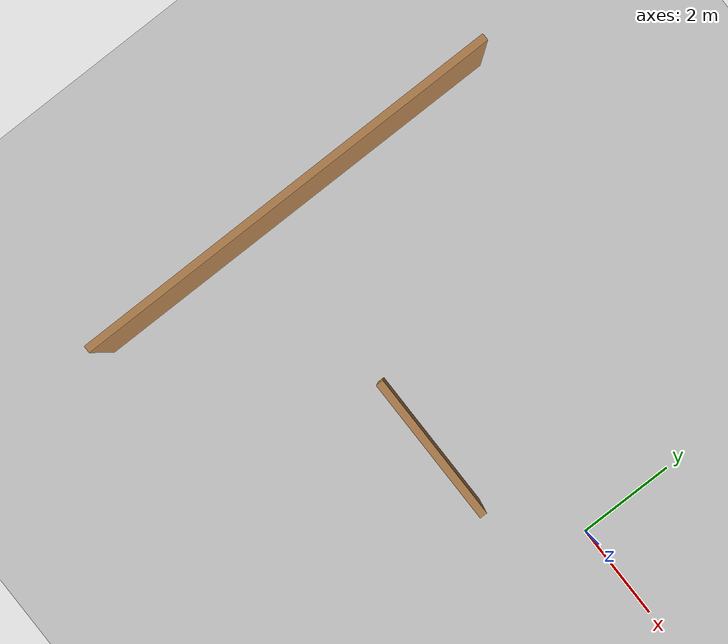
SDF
<sdf version="1.7">
 <world name="default">
  <model name="ground_plane">
   <static>1</static>
   <link name="link">
    <collision name="collision">
     <geometry><plane><normal>0 0 1</normal><size>100 100</size></plane></geometry>
     <surface>
      <contact><collide_bitmask>65535</collide_bitmask></contact>
      <friction><ode><mu>100</mu><mu2>50</mu2></ode></friction>
     </surface>
    </collision>
    <visual name="visual">
     <cast_shadows>0</cast_shadows>
     <geometry><plane><normal>0 0 1</normal><size>100 100</size></plane></geometry>
     <material>
      <script><uri>file://media/materials/scripts/gazebo.material</uri><name>Gazebo/Grey</name></script>
     </material>
    </visual>
   </link>
  </model>
  <model name="mundo_normal1">
   <pose>-1.83298 -2.00796 0 0 -0 0</pose>
   <link name="Wall_10">
    <collision name="Wall_10_Collision">
     <geometry><box><size>3 0.15 2.5</size></box></geometry>
     <pose>0 0 1.25 0 -0 0</pose>
    </collision>
    <visual name="Wall_10_Visual">
     <pose>0 0 1.25 0 -0 0</pose>
     <geometry><box><size>3 0.15 2.5</size></box></geometry>
     <material>
      <script><uri>file://media/materials/scripts/gazebo.material</uri><name>Gazebo/Wood</name></script>
      <ambient>1 1 1 1</ambient>
     </material>
     <meta><layer>0</layer></meta>
    </visual>
    <pose>-1.425 0.7 0 0 -0 3.14159</pose>
   </link>
   <link name="Wall_8">
    <collision name="Wall_8_Collision">
     <geometry><box><size>9 0.15 2.5</size></box></geometry>
     <pose>0 0 1.25 0 -0 0</pose>
    </collision>
    <visual name="Wall_8_Visual">
     <pose>0 0 1.25 0 -0 0</pose>
     <geometry><box><size>9 0.15 2.5</size></box></geometry>
     <material>
      <script><uri>file://media/materials/scripts/gazebo.material</uri><name>Gazebo/Wood</name></script>
      <ambient>1 1 1 1</ambient>
     </material>
     <meta><layer>0</layer></meta>
    </visual>
    <pose>-6.6 1.475 0 0 -0 1.5708</pose>
   </link>
   <static>1</static>
  </model>
 </world>
</sdf>
